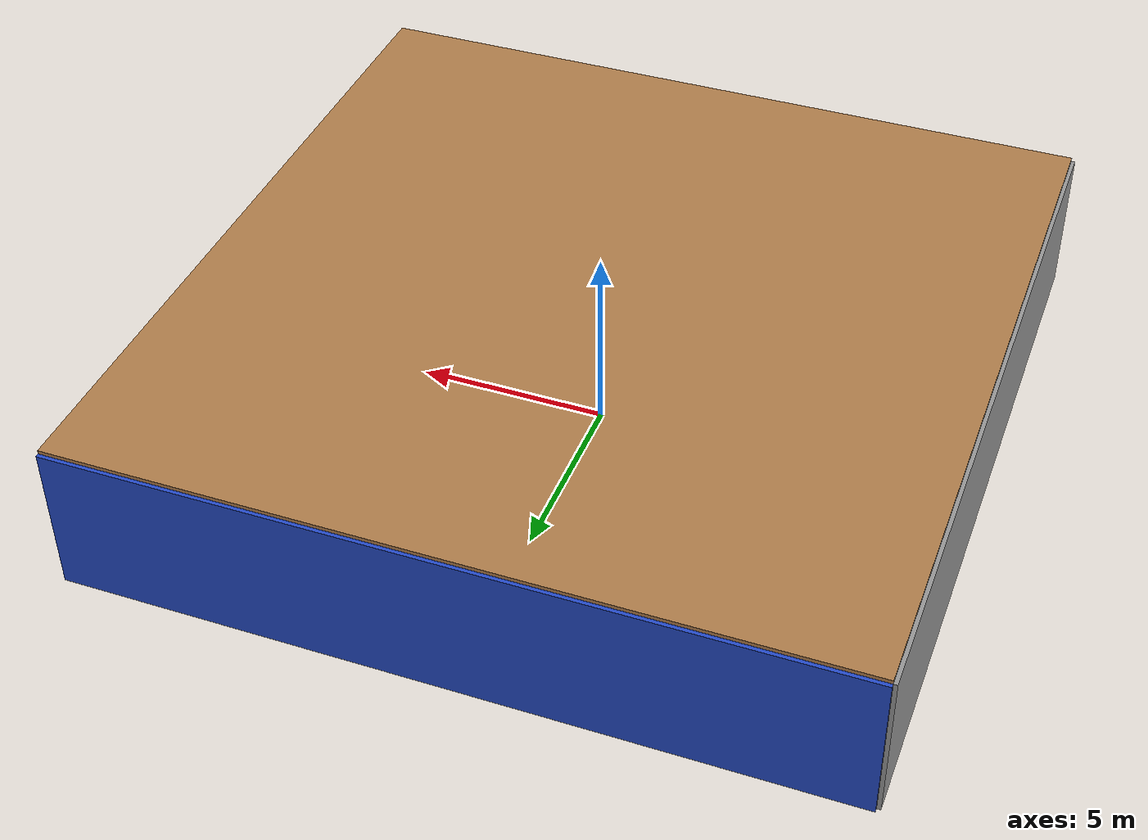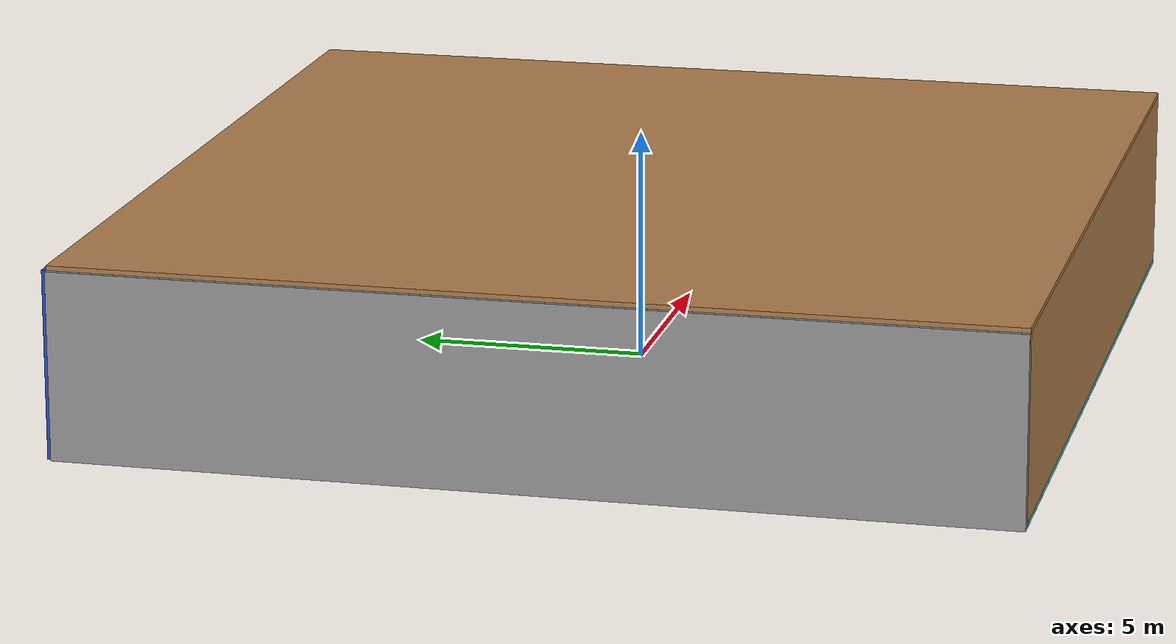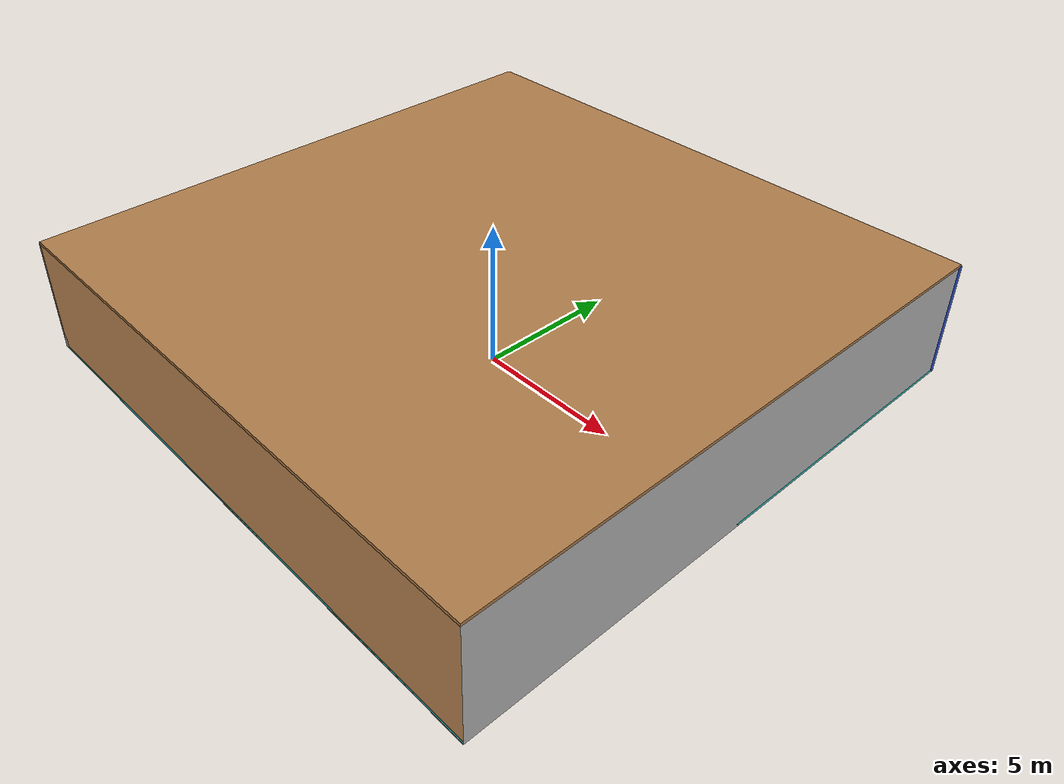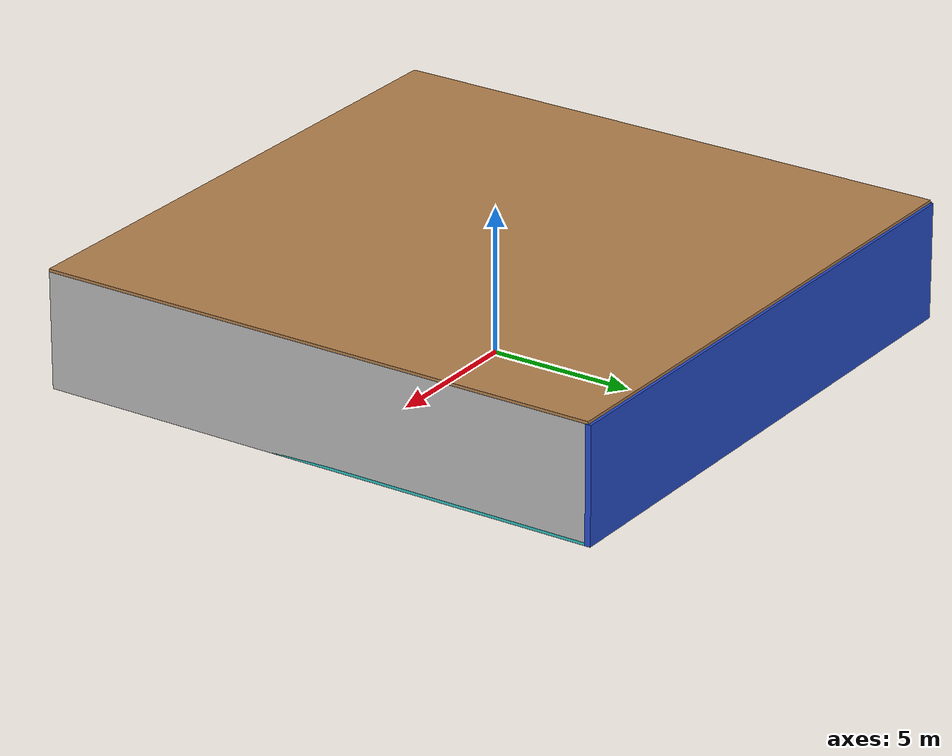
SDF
<sdf version="1.4">
 <world name="default">
  <physics type="ode">
   <max_step_size>0.001</max_step_size>
   <real_time_factor>1</real_time_factor>
   <real_time_update_rate>1000</real_time_update_rate>
   <gravity>0 0 -9.8</gravity>
  </physics>
  <scene><ambient>0.4 0.4 0.4 1</ambient><background>0.7 0.7 0.7 1</background><shadows>1</shadows></scene>
  <model name="Surrounding">
   <static>1</static>
   <link name="Ceiling">
    <collision name="Ceiling_Collision"><geometry><box><size>20 20 0.1</size></box></geometry></collision>
    <visual name="Ceiling_Visual">
     <geometry><box><size>20 20 0.1</size></box></geometry>
     <material>
      <script><uri>file://media/materials/scripts/gazebo.material</uri><name>Gazebo/Wood</name></script>
     </material>
    </visual>
    <pose>0 0 4.05 0 0 0</pose>
   </link>
   <link name="Wall_South">
    <collision name="Wall_South_Collision">
     <geometry><box><size>20 0 4</size></box></geometry>
     <pose>0 0 2 0 -0 0</pose>
    </collision>
    <visual name="Wall_South_Visual">
     <pose>0 0 2 0 -0 0</pose>
     <geometry><box><size>20 0 4</size></box></geometry>
     <material>
      <script><uri>file://media/materials/scripts/gazebo.material</uri><name>Gazebo/WoodPallet</name></script>
     </material>
    </visual>
    <velocity_decay><linear>0</linear><angular>0</angular></velocity_decay>
    <pose>0 -10 0 0 -0 0</pose>
   </link>
   <link name="Wall_East">
    <collision name="Wall_21_Collision">
     <geometry><box><size>20 0 4</size></box></geometry>
     <pose>0 0 2 0 -0 0</pose>
    </collision>
    <visual name="Wall_21_Visual">
     <pose>0 0 2 0 -0 0</pose>
     <geometry><box><size>20 0 4</size></box></geometry>
     <material>
      <script><uri>file://media/materials/scripts/gazebo.material</uri><name>Gazebo/LightOn</name></script>
     </material>
    </visual>
    <velocity_decay><linear>0</linear><angular>0</angular></velocity_decay>
    <pose>10 0 0 0 -0 1.5708</pose>
   </link>
   <link name="Wall_North">
    <collision name="Wall_22_Collision">
     <geometry><box><size>20 0.2 4</size></box></geometry>
     <pose>0 0 2 0 -0 0</pose>
    </collision>
    <visual name="Wall_22_Visual">
     <pose>0 0 2 0 -0 0</pose>
     <geometry><box><size>20 0.2 4</size></box></geometry>
     <material>
      <script><uri>file://media/materials/scripts/gazebo.material</uri><name>Gazebo/BlueLaser</name></script>
     </material>
    </visual>
    <velocity_decay><linear>0</linear><angular>0</angular></velocity_decay>
    <pose>0 10 0 0 -0 0</pose>
   </link>
   <link name="Wall_West">
    <collision name="Wall_23_Collision">
     <geometry><box><size>20 0.2 4</size></box></geometry>
     <pose>0 0 2 0 -0 0</pose>
    </collision>
    <visual name="Wall_23_Visual">
     <pose>0 0 2 0 -0 0</pose>
     <geometry><box><size>20 0.2 4</size></box></geometry>
     <material>
      <script><uri>file://media/materials/scripts/gazebo.material</uri><name>Gazebo/Grey</name></script>
     </material>
    </visual>
    <velocity_decay><linear>0</linear><angular>0</angular></velocity_decay>
    <pose>-10 0 0 0 0 -1.5708</pose>
   </link>
   <link name="Ground_link">
    <collision name="collision">
     <pose>0 0 .05 0 -0 0</pose>
     <geometry><box><size>20 20 0.1</size></box></geometry>
    </collision>
    <visual name="visual">
     <pose>0 0 .05 0 -0 0</pose>
     <geometry><box><size>20 20 0.1</size></box></geometry>
     <material>
      <script>
       <uri>file://media/materials/scripts/gazebo.material</uri>
       <name>Gazebo/TurquoiseGlowOutline</name>
      </script>
     </material>
    </visual>
   </link>
   <static>1</static>
  </model>
  <spherical_coordinates>
   <surface_model>EARTH_WGS84</surface_model>
   <latitude_deg>0</latitude_deg>
   <longitude_deg>0</longitude_deg>
   <elevation>0</elevation>
   <heading_deg>0</heading_deg>
  </spherical_coordinates>
  <light name="lightball_0" type="diffuse">
   <diffuse>0.8 0.8 0.8 1</diffuse>
   <specular>0.2 0.2 0.2 1</specular>
   <attenuation>
    <range>100</range>
    <constant>0.7</constant>
    <linear>0.01</linear>
    <quadratic>0.001</quadratic>
   </attenuation>
   <direction>-0.5 0.1 -0.9</direction>
   <pose>3.50700940583 7.30183661966 2.96663467955 0 0 0</pose>
  </light>
  <light name="lightball_1" type="diffuse">
   <diffuse>0.8 0.8 0.8 1</diffuse>
   <specular>0.2 0.2 0.2 1</specular>
   <attenuation>
    <range>100</range>
    <constant>0.7</constant>
    <linear>0.01</linear>
    <quadratic>0.001</quadratic>
   </attenuation>
   <direction>-0.5 0.1 -0.9</direction>
   <pose>-0.442053068254 9.20487133656 3.08285170232 0 0 0</pose>
  </light>
  <light name="lightball_2" type="diffuse">
   <diffuse>0.8 0.8 0.8 1</diffuse>
   <specular>0.2 0.2 0.2 1</specular>
   <attenuation>
    <range>100</range>
    <constant>0.7</constant>
    <linear>0.01</linear>
    <quadratic>0.001</quadratic>
   </attenuation>
   <direction>-0.5 0.1 -0.9</direction>
   <pose>-9.01370626496 7.50319693474 3.04575254558 0 0 0</pose>
  </light>
  <light name="lightball_3" type="diffuse">
   <diffuse>0.8 0.8 0.8 1</diffuse>
   <specular>0.2 0.2 0.2 1</specular>
   <attenuation>
    <range>100</range>
    <constant>0.7</constant>
    <linear>0.01</linear>
    <quadratic>0.001</quadratic>
   </attenuation>
   <direction>-0.5 0.1 -0.9</direction>
   <pose>6.87234285486 7.08716883611 0.519038682308 0 0 0</pose>
  </light>
  <light name="lightball_4" type="diffuse">
   <diffuse>0.8 0.8 0.8 1</diffuse>
   <specular>0.2 0.2 0.2 1</specular>
   <attenuation>
    <range>100</range>
    <constant>0.7</constant>
    <linear>0.01</linear>
    <quadratic>0.001</quadratic>
   </attenuation>
   <direction>-0.5 0.1 -0.9</direction>
   <pose>2.05238261557 0.331952625137 2.34414772836 0 0 0</pose>
  </light>
  <light name="lightball_5" type="diffuse">
   <diffuse>0.8 0.8 0.8 1</diffuse>
   <specular>0.2 0.2 0.2 1</specular>
   <attenuation>
    <range>100</range>
    <constant>0.7</constant>
    <linear>0.01</linear>
    <quadratic>0.001</quadratic>
   </attenuation>
   <direction>-0.5 0.1 -0.9</direction>
   <pose>6.38106380222 8.79544627984 3.4752430363 0 0 0</pose>
  </light>
  <light name="lightball_6" type="diffuse">
   <diffuse>0.8 0.8 0.8 1</diffuse>
   <specular>0.2 0.2 0.2 1</specular>
   <attenuation>
    <range>100</range>
    <constant>0.7</constant>
    <linear>0.01</linear>
    <quadratic>0.001</quadratic>
   </attenuation>
   <direction>-0.5 0.1 -0.9</direction>
   <pose>5.12600654644 0.12876665712 2.53237175956 0 0 0</pose>
  </light>
  <light name="lightball_7" type="diffuse">
   <diffuse>0.8 0.8 0.8 1</diffuse>
   <specular>0.2 0.2 0.2 1</specular>
   <attenuation>
    <range>100</range>
    <constant>0.7</constant>
    <linear>0.01</linear>
    <quadratic>0.001</quadratic>
   </attenuation>
   <direction>-0.5 0.1 -0.9</direction>
   <pose>7.05600446724 -5.34462684334 0.836349284966 0 0 0</pose>
  </light>
  <light name="lightball_8" type="diffuse">
   <diffuse>0.8 0.8 0.8 1</diffuse>
   <specular>0.2 0.2 0.2 1</specular>
   <attenuation>
    <range>100</range>
    <constant>0.7</constant>
    <linear>0.01</linear>
    <quadratic>0.001</quadratic>
   </attenuation>
   <direction>-0.5 0.1 -0.9</direction>
   <pose>-1.31458855808 1.15080187529 2.51342507619 0 0 0</pose>
  </light>
  <light name="lightball_9" type="diffuse">
   <diffuse>0.8 0.8 0.8 1</diffuse>
   <specular>0.2 0.2 0.2 1</specular>
   <attenuation>
    <range>100</range>
    <constant>0.7</constant>
    <linear>0.01</linear>
    <quadratic>0.001</quadratic>
   </attenuation>
   <direction>-0.5 0.1 -0.9</direction>
   <pose>-9.93620383935 2.97611935876 3.0006129712 0 0 0</pose>
  </light>
  <light name="lightball_10" type="diffuse">
   <diffuse>0.8 0.8 0.8 1</diffuse>
   <specular>0.2 0.2 0.2 1</specular>
   <attenuation>
    <range>100</range>
    <constant>0.7</constant>
    <linear>0.01</linear>
    <quadratic>0.001</quadratic>
   </attenuation>
   <direction>-0.5 0.1 -0.9</direction>
   <pose>-0.607242651834 2.90080664232 1.6881179801 0 0 0</pose>
  </light>
  <light name="lightball_11" type="diffuse">
   <diffuse>0.8 0.8 0.8 1</diffuse>
   <specular>0.2 0.2 0.2 1</specular>
   <attenuation>
    <range>100</range>
    <constant>0.7</constant>
    <linear>0.01</linear>
    <quadratic>0.001</quadratic>
   </attenuation>
   <direction>-0.5 0.1 -0.9</direction>
   <pose>8.83726455641 -2.54656958313 2.06866287585 0 0 0</pose>
  </light>
  <light name="lightball_12" type="diffuse">
   <diffuse>0.8 0.8 0.8 1</diffuse>
   <specular>0.2 0.2 0.2 1</specular>
   <attenuation>
    <range>100</range>
    <constant>0.7</constant>
    <linear>0.01</linear>
    <quadratic>0.001</quadratic>
   </attenuation>
   <direction>-0.5 0.1 -0.9</direction>
   <pose>-1.81871258248 -5.83046860202 3.74772994696 0 0 0</pose>
  </light>
  <light name="lightball_13" type="diffuse">
   <diffuse>0.8 0.8 0.8 1</diffuse>
   <specular>0.2 0.2 0.2 1</specular>
   <attenuation>
    <range>100</range>
    <constant>0.7</constant>
    <linear>0.01</linear>
    <quadratic>0.001</quadratic>
   </attenuation>
   <direction>-0.5 0.1 -0.9</direction>
   <pose>1.31768041004 3.85834364297 1.3077847574 0 0 0</pose>
  </light>
  <include><uri>model://cabinet</uri><pose>-7.96822646197 -5.03211244885 0 0 0 3.03590683576</pose></include>
  <include>
   <uri>model://construction_cone</uri>
   <pose>-7.70662752213 1.47029091857 0 0 0 2.83418138122</pose>
  </include>
  <include><uri>model://cabinet</uri><pose>-4.6707617458 8.16259396502 0 0 0 1.36577382338</pose></include>
  <include>
   <uri>model://robocup_3Dsim_goal</uri>
   <pose>1.12471053261 -8.27344975438 0 0 0 1.65337875798</pose>
  </include>
  <include><uri>model://table</uri><pose>0.970129071686 -4.8640388659 0 0 0 1.35906532851</pose></include>
  <include><uri>model://cabinet</uri><pose>1.15967744466 -1.19104301906 0 0 0 1.27017013761</pose></include>
  <include>
   <uri>model://construction_cone</uri>
   <pose>4.71852569923 -4.85382838577 0 0 0 2.36461807867</pose>
  </include>
  <include>
   <uri>model://textured_shapes</uri>
   <pose>4.08928212627 1.66404462152 0 0 0 0.872467807169</pose>
  </include>
  <include><uri>model://cabinet</uri><pose>7.28135905354 -7.44823605051 0 0 0 0.602442174716</pose></include>
 </world>
</sdf>

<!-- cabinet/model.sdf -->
<sdf version="1.5">
  <model name="cabinet">
    <static>true</static>
    <link name="cabinet_bottom_plate">
      <inertial>
        <pose>0 0 -1 0 0 0</pose>
        <inertia>
          <ixx>2.050000</ixx>
          <ixy>0</ixy>
          <ixz>0</ixz>
          <iyy>2.050000</iyy>
          <iyz>0</iyz>
          <izz>2.050000</izz>
        </inertia>
        <mass>25.000000</mass>
      </inertial>
      <collision name="cabinet_bottom_plate_geom">
        <pose>0 0 0.010000 0 0 0</pose>
        <geometry>
          <box>
            <size>0.450000 0.450000 0.020000</size>
          </box>
        </geometry>
      </collision>
      <visual name="cabinet_bottom_plate_geom_visual">
        <pose>0 0 0.010000 0 0 0</pose>
        <geometry>
          <box>
            <size>0.450000 0.450000 0.020000</size>
          </box>
        </geometry>
        <material>
          <script>
            <uri>model://media/materials/scripts/gazebo.material</uri>
            <name>Gazebo/Wood</name>
          </script>
        </material>
      </visual>
      <collision name="cabinet_bottom_plate_geom_cabinet_back_plate">
        <pose>0.235000 0 0.510000 0 0 0</pose>
        <geometry>
          <box>
            <size>0.020000 0.450000 1.020000</size>
          </box>
        </geometry>
      </collision>
      <visual name="cabinet_bottom_plate_geom_cabinet_back_plate_visual">
        <pose>0.235000 0 0.510000 0 0 0</pose>
        <geometry>
          <box>
            <size>0.020000 0.450000 1.020000</size>
          </box>
        </geometry>
        <material>
          <script>
            <uri>model://media/materials/scripts/gazebo.material</uri>
            <name>Gazebo/Wood</name>
          </script>
        </material>
      </visual>
      <collision name="cabinet_bottom_plate_geom_cabinet_left_plate">
        <pose>0 0.235000 0.510000 0 0 0</pose>
        <geometry>
          <box>
            <size>0.450000 0.020000 1.020000</size>
          </box>
        </geometry>
      </collision>
      <visual name="cabinet_bottom_plate_geom_cabinet_left_plate_visual">
        <pose>0 0.235000 0.510000 0 0 0</pose>
        <geometry>
          <box>
            <size>0.450000 0.020000 1.020000</size>
          </box>
        </geometry>
        <material>
          <script>
            <uri>model://media/materials/scripts/gazebo.material</uri>
            <name>Gazebo/Wood</name>
          </script>
        </material>
      </visual>
      <collision name="cabinet_bottom_plate_geom_cabinet_middle_plate">
        <pose>0 0 0.510000 0 0 0</pose>
        <geometry>
          <box>
            <size>0.450000 0.450000 0.020000</size>
          </box>
        </geometry>
      </collision>
      <visual name="cabinet_bottom_plate_geom_cabinet_middle_plate_visual">
        <pose>0 0 0.510000 0 0 0</pose>
        <geometry>
          <box>
            <size>0.450000 0.450000 0.020000</size>
          </box>
        </geometry>
        <material>
          <script>
            <uri>model://media/materials/scripts/gazebo.material</uri>
            <name>Gazebo/Wood</name>
          </script>
        </material>
      </visual>
      <collision name="cabinet_bottom_plate_geom_cabinet_right_plate">
        <pose>0 -0.235000 0.510000 0 0 0</pose>
        <geometry>
          <box>
            <size>0.450000 0.020000 1.020000</size>
          </box>
        </geometry>
      </collision>
      <visual name="cabinet_bottom_plate_geom_cabinet_right_plate_visual">
        <pose>0 -0.235000 0.510000 0 0 0</pose>
        <geometry>
          <box>
            <size>0.450000 0.020000 1.020000</size>
          </box>
        </geometry>
        <material>
          <script>
            <uri>model://media/materials/scripts/gazebo.material</uri>
            <name>Gazebo/Wood</name>
          </script>
        </material>
      </visual>
      <collision name="cabinet_bottom_plate_geom_cabinet_top_plate">
        <pose>0 0 1.010000 0 0 0</pose>
        <geometry>
          <box>
            <size>0.450000 0.450000 0.020000</size>
          </box>
        </geometry>
      </collision>
      <visual name="cabinet_bottom_plate_geom_cabinet_top_plate_visual">
        <pose>0 0 1.010000 0 0 0</pose>
        <geometry>
          <box>
            <size>0.450000 0.450000 0.020000</size>
          </box>
        </geometry>
        <material>
          <script>
            <uri>model://media/materials/scripts/gazebo.material</uri>
            <name>Gazebo/Wood</name>
          </script>
        </material>
      </visual>
    </link>
  </model>
</sdf>

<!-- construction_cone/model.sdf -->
<sdf version="1.5">
  <model name="Construction Cone">
    <link name="link">
      <collision name="collision">
        <geometry>
          <mesh>
            <scale>10 10 10</scale>
            <uri>file://isr-testbed/construction_cone/meshes/construction_cone.dae</uri>
          </mesh>
        </geometry>
      </collision>
      <visual name="visual">
        <geometry>
          <mesh>
            <scale>10 10 10</scale>
            <uri>file://isr-testbed/construction_cone/meshes/construction_cone.dae</uri>
          </mesh>
        </geometry>
      </visual>
    </link>
  </model>
</sdf>

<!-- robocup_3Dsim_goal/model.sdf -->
<sdf version="1.5">
  <model name="robocup_3d_goal">
    <static>true</static>
    <link name="left_post">
      <pose>0 1.05 0.45 0 0 0</pose>
      <collision name="collision">
        <geometry>
          <cylinder>
            <radius>0.05</radius>
            <length>0.9</length>
          </cylinder>
        </geometry>
      </collision>
      <visual name="visual">
        <geometry>
          <cylinder>
            <radius>0.05</radius>
            <length>0.9</length>
          </cylinder>
        </geometry>
        <material>
          <script>
            <uri>file://media/materials/scripts/gazebo.material</uri>
            <name>Gazebo/ZincYellow</name>
          </script>
        </material>
      </visual>
    </link>
    <link name="left_support_horiz_lower">
      <pose>0.30 1.05 0.01 0 0 0</pose>
      <collision name="collision">
        <geometry>
          <box>
            <size>0.50 0.02 0.02</size>
          </box>
        </geometry>
      </collision>
      <visual name="visual">
        <geometry>
          <box>
            <size>0.50 0.02 0.02</size>
          </box>
        </geometry>
        <material>
          <script>
            <uri>file://media/materials/scripts/gazebo.material</uri>
            <name>Gazebo/White</name>
          </script>
        </material>
      </visual>
    </link>
    <link name="left_support_horiz_upper">
      <pose>0.30 1.05 0.79 0 0 0</pose>
      <collision name="collision">
        <geometry>
          <box>
            <size>0.50 0.02 0.02</size>
          </box>
        </geometry>
      </collision>
      <visual name="visual">
        <geometry>
          <box>
            <size>0.50 0.02 0.02</size>
          </box>
        </geometry>
        <material>
          <script>
            <uri>file://media/materials/scripts/gazebo.material</uri>
            <name>Gazebo/White</name>
          </script>
        </material>
      </visual>
    </link>
    <link name="left_support_vertical">
      <pose>0.56 1.05 0.4 0 1.5708 0</pose>
      <collision name="collision">
        <geometry>
          <box>
            <size>0.80 0.02 0.02</size>
          </box>
        </geometry>
      </collision>
      <visual name="visual">
        <geometry>
          <box>
            <size>0.80 0.02 0.02</size>
          </box>
        </geometry>
        <material>
          <script>
            <uri>file://media/materials/scripts/gazebo.material</uri>
            <name>Gazebo/White</name>
          </script>
        </material>
      </visual>
    </link>
    <link name="right_support_horiz_lower">
      <pose>0.30 -1.05 0.01 0 0 0</pose>
      <collision name="collision">
        <geometry>
          <box>
            <size>0.50 0.02 0.02</size>
          </box>
        </geometry>
      </collision>
      <visual name="visual">
        <geometry>
          <box>
            <size>0.50 0.02 0.02</size>
          </box>
        </geometry>
        <material>
          <script>
            <uri>file://media/materials/scripts/gazebo.material</uri>
            <name>Gazebo/White</name>
          </script>
        </material>
      </visual>
    </link>
    <link name="right_support_horiz_upper">
      <pose>0.30 -1.05 0.79 0 0 0</pose>
      <collision name="collision">
        <geometry>
          <box>
            <size>0.50 0.02 0.02</size>
          </box>
        </geometry>
      </collision>
      <visual name="visual">
        <geometry>
          <box>
            <size>0.50 0.02 0.02</size>
          </box>
        </geometry>
        <material>
          <script>
            <uri>file://media/materials/scripts/gazebo.material</uri>
            <name>Gazebo/White</name>
          </script>
        </material>
      </visual>
    </link>
    <link name="right_support_vertical">
      <pose>0.56 -1.05 0.4 0 1.5708 0</pose>
      <collision name="collision">
        <geometry>
          <box>
            <size>0.80 0.02 0.02</size>
          </box>
        </geometry>
      </collision>
      <visual name="visual">
        <geometry>
          <box>
            <size>0.80 0.02 0.02</size>
          </box>
        </geometry>
        <material>
          <script>
            <uri>file://media/materials/scripts/gazebo.material</uri>
            <name>Gazebo/White</name>
          </script>
        </material>
      </visual>
    </link>
    <link name="center_support_horiz_lower">
      <pose>0.56 0 0.01 0 1.5708 0</pose>
      <collision name="collision">
        <geometry>
          <box>
            <size>0.02 2.08 0.02</size>
          </box>
        </geometry>
      </collision>
      <visual name="visual">
        <geometry>
          <box>
            <size>0.02 2.08 0.02</size>
          </box>
        </geometry>
        <material>
          <script>
            <uri>file://media/materials/scripts/gazebo.material</uri>
            <name>Gazebo/White</name>
          </script>
        </material>
      </visual>
    </link>
    <link name="center_support_horiz_upper">
      <pose>0.56 0 0.79 0 1.5708 0</pose>
      <collision name="collision">
        <geometry>
          <box>
            <size>0.02 2.08 0.02</size>
          </box>
        </geometry>
      </collision>
      <visual name="visual">
        <geometry>
          <box>
            <size>0.02 2.08 0.02</size>
          </box>
        </geometry>
        <material>
          <script>
            <uri>file://media/materials/scripts/gazebo.material</uri>
            <name>Gazebo/White</name>
          </script>
        </material>
      </visual>
    </link>
    <link name="right_post">
      <pose>0 -1.05 0.45 0 0 0</pose>
      <collision name="collision">
        <geometry>
          <cylinder>
            <radius>0.05</radius>
            <length>0.9</length>
          </cylinder>
        </geometry>
      </collision>
      <visual name="visual">
        <geometry>
          <cylinder>
            <radius>0.05</radius>
            <length>0.9</length>
          </cylinder>
        </geometry>
        <material>
          <script>
            <uri>file://media/materials/scripts/gazebo.material</uri>
            <name>Gazebo/ZincYellow</name>
          </script>
        </material>
      </visual>
    </link>
    <link name="crossbar">
      <pose>0 0 0.85 1.57 1.57 0</pose>
      <collision name="collision">
        <geometry>
          <cylinder>
            <radius>0.05</radius>
            <length>2.0</length>
          </cylinder>
        </geometry>
      </collision>
      <visual name="visual">
        <geometry>
          <cylinder>
            <radius>0.05</radius>
            <length>2.0</length>
          </cylinder>
        </geometry>
        <material>
          <script>
            <uri>file://media/materials/scripts/gazebo.material</uri>
            <name>Gazebo/ZincYellow</name>
          </script>
        </material>
      </visual>
    </link>
    <link name="center_net">
      <pose>0.56 0 0.40 0 0 0</pose>
      <collision name="collision">
        <geometry>
          <box>
            <size>0.01 2.1 0.80</size>
          </box>
        </geometry>
      </collision>
      <visual name="visual">
        <geometry>
          <box>
            <size>0.01 2.1 0.80</size>
          </box>
        </geometry>
        <material>
          <script>
            <uri>model://../model_source/models/robocup09_spl_field/materials/scripts/</uri>
            <uri>model://../model_source/models/robocup09_spl_field/materials/textures/</uri>
            <name>RoboCup/Net</name>
          </script>
        </material>
      </visual>
    </link>
    <link name="left_net">
      <pose>0.30 1.05 0.40 0 0 0</pose>
      <collision name="collision">
        <geometry>
          <box>
            <size>0.50 0.01 0.76</size>
          </box>
        </geometry>
      </collision>
      <visual name="visual">
        <geometry>
          <box>
            <size>0.50 0.01 0.76</size>
          </box>
        </geometry>
        <material>
          <script>
            <uri>model://../model_source/models/robocup09_spl_field/materials/scripts/</uri>
            <uri>model://../model_source/models/robocup09_spl_field/materials/textures/</uri>
            <name>RoboCup/Net</name>
          </script>
        </material>
      </visual>
    </link>
    <link name="right_net">
      <pose>0.30 -1.05 0.40 0 0 0</pose>
      <collision name="collision">
        <geometry>
          <box>
            <size>0.50 0.01 0.76</size>
          </box>
        </geometry>
      </collision>
      <visual name="visual">
        <geometry>
          <box>
            <size>0.50 0.01 0.76</size>
          </box>
        </geometry>
        <material>
          <script>
            <uri>model://../model_source/models/robocup09_spl_field/materials/scripts/</uri>
            <uri>model://../model_source/models/robocup09_spl_field/materials/textures/</uri>
            <name>RoboCup/Net</name>
          </script>
        </material>
      </visual>
    </link>
  </model>
</sdf>

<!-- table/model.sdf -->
<sdf version="1.5">
  <model name="table">
    <static>true</static>
    <link name="link">
      <collision name="surface">
        <pose>0 0 1.0 0 0 0</pose>
        <geometry>
          <box>
            <size>1.5 0.8 0.03</size>
          </box>
        </geometry>
        <surface>
          <friction>
            <ode>
              <mu>0.6</mu>
              <mu2>0.6</mu2>
            </ode>
          </friction>
        </surface>
      </collision>
      <visual name="visual1">
        <pose>0 0 1.0 0 0 0</pose>
        <geometry>
          <box>
            <size>1.5 0.8 0.03</size>
          </box>
        </geometry>
        <material>
          <script>
            <uri>model://media/materials/scripts/gazebo.material</uri>
            <name>Gazebo/Wood</name>
          </script>
        </material>
      </visual>
      <collision name="front_left_leg">
        <pose>0.68 0.38 0.5 0 0 0</pose>
        <geometry>
          <cylinder>
            <radius>0.02</radius>
            <length>1.0</length>
          </cylinder>
        </geometry>
      </collision>
      <visual name="front_left_leg">
        <pose>0.68 0.38 0.5 0 0 0</pose>
        <geometry>
          <cylinder>
            <radius>0.02</radius>
            <length>1.0</length>
          </cylinder>
        </geometry>
        <material>
          <script>
            <uri>model://media/materials/scripts/gazebo.material</uri>
            <name>Gazebo/Grey</name>
          </script>
        </material>
      </visual>
      <collision name="front_right_leg">
        <pose>0.68 -0.38 0.5 0 0 0</pose>
        <geometry>
          <cylinder>
            <radius>0.02</radius>
            <length>1.0</length>
          </cylinder>
        </geometry>
      </collision>
      <visual name="front_right_leg">
        <pose>0.68 -0.38 0.5 0 0 0</pose>
        <geometry>
          <cylinder>
            <radius>0.02</radius>
            <length>1.0</length>
          </cylinder>
        </geometry>
        <material>
          <script>
            <uri>model://media/materials/scripts/gazebo.material</uri>
            <name>Gazebo/Grey</name>
          </script>
        </material>
      </visual>
      <collision name="back_right_leg">
        <pose>-0.68 -0.38 0.5 0 0 0</pose>
        <geometry>
          <cylinder>
            <radius>0.02</radius>
            <length>1.0</length>
          </cylinder>
        </geometry>
      </collision>
      <visual name="back_right_leg">
        <pose>-0.68 -0.38 0.5 0 0 0</pose>
        <geometry>
          <cylinder>
            <radius>0.02</radius>
            <length>1.0</length>
          </cylinder>
        </geometry>
        <material>
          <script>
            <uri>model://media/materials/scripts/gazebo.material</uri>
            <name>Gazebo/Grey</name>
          </script>
        </material>
      </visual>
      <collision name="back_left_leg">
        <pose>-0.68 0.38 0.5 0 0 0</pose>
        <geometry>
          <cylinder>
            <radius>0.02</radius>
            <length>1.0</length>
          </cylinder>
        </geometry>
      </collision>
      <visual name="back_left_leg">
        <pose>-0.68 0.38 0.5 0 0 0</pose>
        <geometry>
          <cylinder>
            <radius>0.02</radius>
            <length>1.0</length>
          </cylinder>
        </geometry>
        <material>
          <script>
            <uri>model://media/materials/scripts/gazebo.material</uri>
            <name>Gazebo/Grey</name>
          </script>
        </material>
      </visual>
    </link>
  </model>
</sdf>

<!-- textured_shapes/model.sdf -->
<sdf version="1.6">
  <model name="textured_shapes">
    <pose>0 0 0.5 0 0 0</pose>
    <link name="box">
      <pose>0 -1.5 0 0 0 0</pose>
      <collision name="collision">
        <geometry>
          <box>
            <size>1 1 1</size>
          </box>
        </geometry>
      </collision>
      <visual name="visual">
        <geometry>
          <box>
            <size>1 1 1</size>
          </box>
        </geometry>
        <material>
          <script>
            <uri>model://../model_source/models/textured_shapes/materials/scripts</uri>
            <uri>model://../model_source/models/textured_shapes/materials/textures</uri>
            <name>TexturedShape/Squares</name>
          </script>
        </material>
      </visual>
    </link>
    <link name="sphere">
      <collision name="collision">
        <geometry>
          <sphere>
            <radius>0.5</radius>
          </sphere>
        </geometry>
      </collision>
      <visual name="visual">
        <geometry>
          <sphere>
            <radius>0.5</radius>
          </sphere>
        </geometry>
        <material>
          <script>
            <uri>model://../model_source/models/textured_shapes/materials/scripts</uri>
            <uri>model://../model_source/models/textured_shapes/materials/textures</uri>
            <name>TexturedShape/Squares</name>
          </script>
        </material>
      </visual>
    </link>
    <link name="cylinder">
      <pose>0 1.5 0 0 0 0</pose>
      <collision name="collision">
        <geometry>
          <cylinder>
            <radius>0.5</radius>
            <length>1</length>
          </cylinder>
        </geometry>
      </collision>
      <visual name="visual">
        <geometry>
          <cylinder>
            <radius>0.5</radius>
            <length>1</length>
          </cylinder>
        </geometry>
        <material>
          <script>
            <uri>model://../model_source/models/textured_shapes/materials/scripts</uri>
            <uri>model://../model_source/models/textured_shapes/materials/textures</uri>
            <name>TexturedShape/Squares</name>
          </script>
        </material>
      </visual>
    </link>
  </model>
</sdf>
